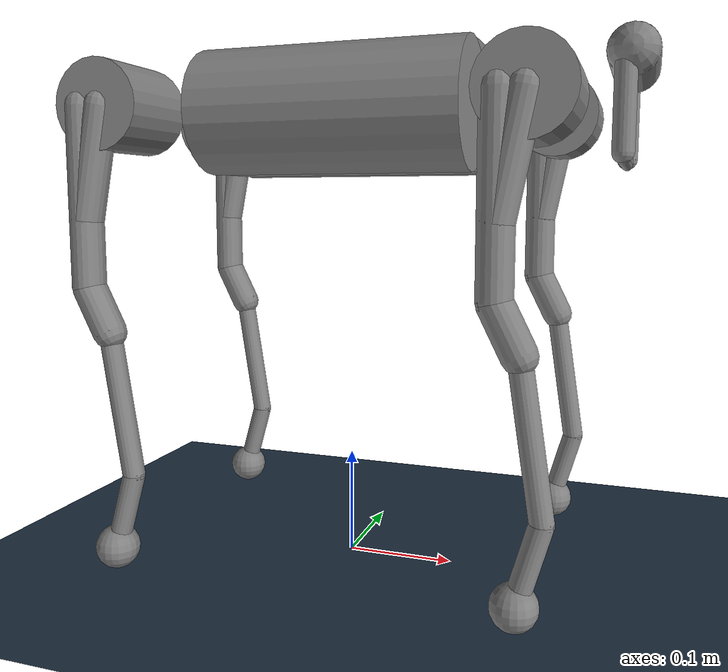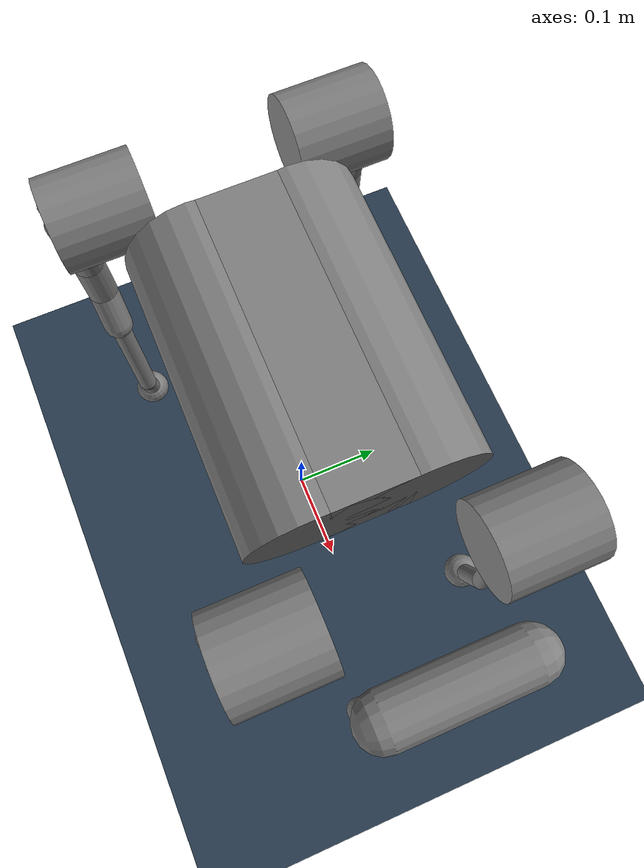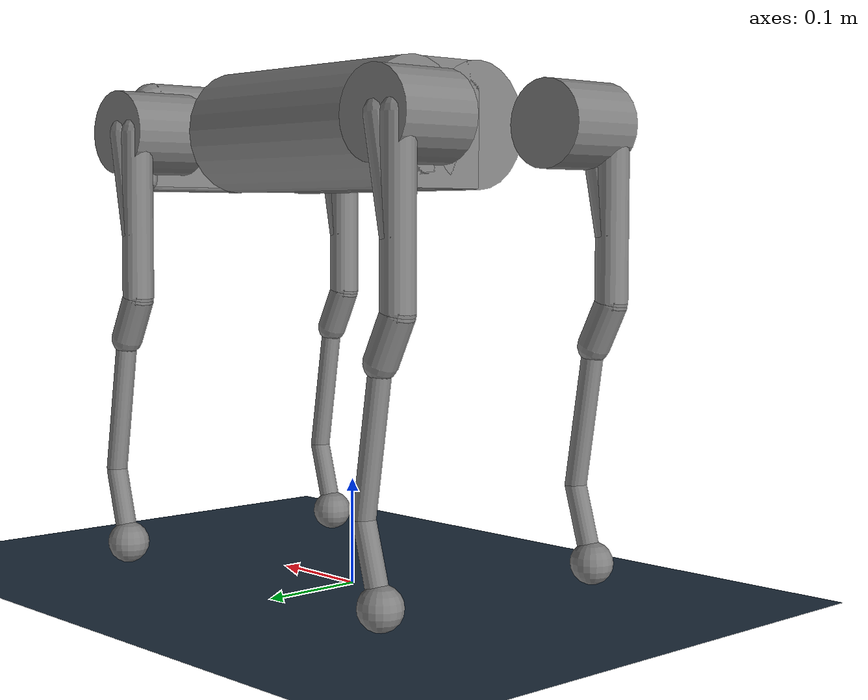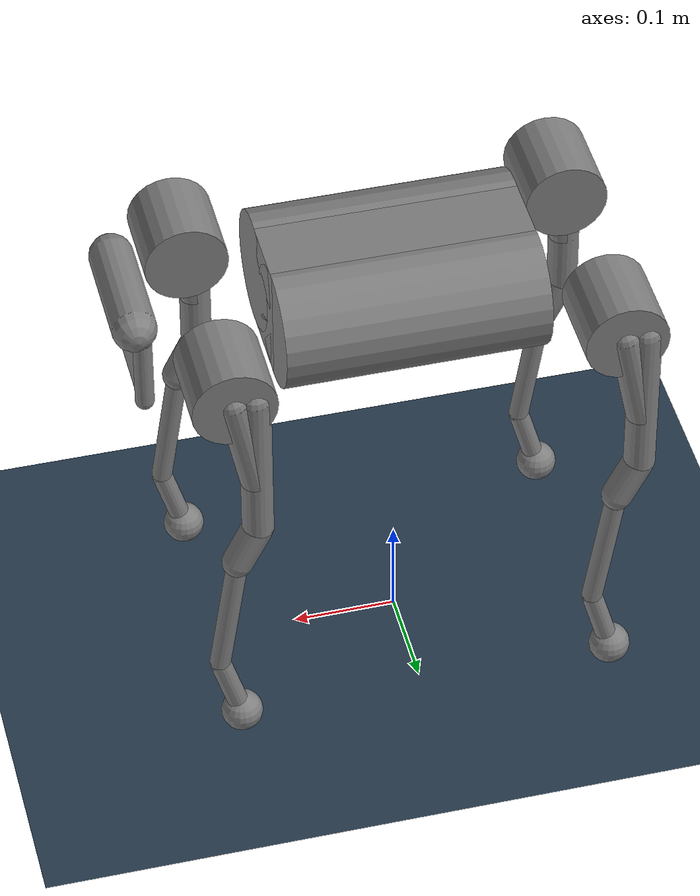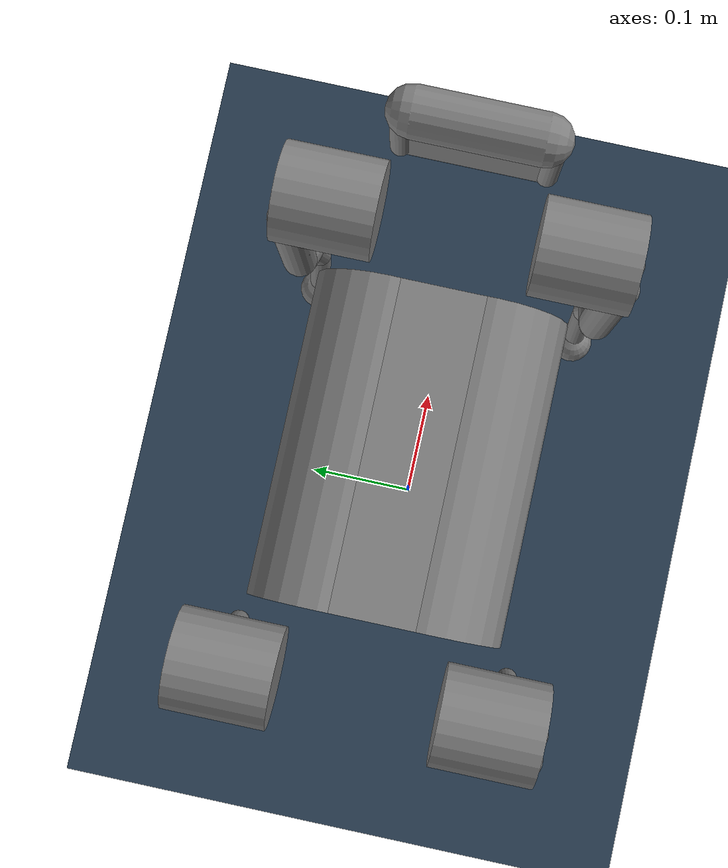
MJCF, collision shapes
<mujoco model="a1">
  <compiler angle="radian" meshdir="assets" texturedir="assets" autolimits="true"/>

  <option cone="elliptic" impratio="100"/>

  <default>
    <default class="a1">
      <geom friction="0.6" margin="0.001"/>
      <joint axis="0 1 0" damping="2" armature="0.01" frictionloss="0.2"/>
      <position kp="100" forcerange="-33.5 33.5"/>
      <default class="abduction">
        <joint axis="1 0 0" damping="1" range="-0.802851 0.802851"/>
        <position ctrlrange="-0.802851 0.802851"/>
      </default>
      <default class="hip">
        <joint range="-1.0472 4.18879"/>
        <position ctrlrange="-1.0472 4.18879"/>
      </default>
      <default class="knee">
        <joint range="-2.69653 -0.916298"/>
        <position ctrlrange="-2.69653 -0.916298"/>
      </default>
      <default class="visual">
        <geom type="mesh" contype="0" conaffinity="0" group="2" material="dark"/>
      </default>
      <default class="collision">
        <geom group="3" type="capsule"/>
        <default class="hip_left">
          <geom size="0.04 0.04" quat="1 1 0 0" type="cylinder" pos="0 0.055 0"/>
        </default>
        <default class="hip_right">
          <geom size="0.04 0.04" quat="1 1 0 0" type="cylinder" pos="0 -0.055 0"/>
        </default>
        <default class="thigh1">
          <geom size="0.015" fromto="-0.02 0 0 -0.02 0 -0.16"/>
        </default>
        <default class="thigh2">
          <geom size="0.015" fromto="0 0 0 -0.02 0 -0.1"/>
        </default>
        <default class="thigh3">
          <geom size="0.015" fromto="-0.02 0 -0.16 0 0 -0.2"/>
        </default>
        <default class="calf1">
          <geom size="0.01" fromto="0 0 0 0.02 0 -0.13"/>
        </default>
        <default class="calf2">
          <geom size="0.01" fromto="0.02 0 -0.13 0 0 -0.2"/>
        </default>
        <default class="foot">
          <geom type="sphere" size="0.02" pos="0 0 -0.2" priority="1" solimp="0.015 1 0.02" condim="6"
            friction="0.8 0.02 0.01"/>
        </default>
      </default>
    </default>
  </default>

  <asset>
    <material name="dark" specular="0" shininess="0.25" rgba="0.2 0.2 0.2 1"/>
    <texture type="2d" name="trunk_A1" file="trunk_A1.png"/>
    <material name="carbonfibre" texture="trunk_A1" specular="0" shininess="0.25"/>

    <mesh class="a1" file="calf.obj"/>
    <mesh class="a1" file="hip.obj"/>
    <mesh class="a1" file="thigh.obj"/>
    <mesh class="a1" file="thigh_mirror.obj"/>
    <mesh class="a1" file="trunk.obj"/>

    <texture name="texplane" type="2d" builtin="checker" rgb1=".2 .3 .4" rgb2=".1 0.15 0.2" width="512" height="512" mark="cross" markrgb=".8 .8 .8"/>
    <material name="matplane" reflectance="0.3" texture="texplane" texrepeat="1 1" texuniform="true"/>
  </asset>

  <worldbody>
    <light directional="true" diffuse=".4 .4 .4" specular="0.1 0.1 0.1" pos="0 0 5.0" dir="0 0 -1" castshadow="false" />
    <light directional="true" diffuse=".6 .6 .6" specular="0.2 0.2 0.2" pos="0 0 4" dir="0 0 -1" />
    <geom name="ground" type="plane" pos="0 0 0" size="0 0 1" material="matplane" condim="1"/>
    <body name="trunk" pos="0 0 0.43" childclass="a1">
      <freejoint/>
      <inertial mass="4.713" pos="0 0.0041 -0.0005"
        fullinertia="0.0158533 0.0377999 0.0456542 -3.66e-05 -6.11e-05 -2.75e-05"/>
      <site name='imu' size='0.01' pos='0.0 0.0 0.0' />
      <geom class="visual" mesh="trunk" material="carbonfibre"/>
      <geom class="collision" size="0.125 0.04 0.057" type="box"/>
      <geom class="collision" quat="1 0 1 0" pos="0 -0.04 0" size="0.058 0.125" type="cylinder"/>
      <geom class="collision" quat="1 0 1 0" pos="0 +0.04 0" size="0.058 0.125" type="cylinder"/>
      <geom class="collision" pos="0.25 0 0" size="0.005 0.06 0.05" type="box"/>
      <geom class="collision" pos="0.25 0.06 -0.01" size="0.009 0.035"/>
      <geom class="collision" pos="0.25 -0.06 -0.01" size="0.009 0.035"/>
      <geom class="collision" pos="0.25 0 -0.05" size="0.005 0.06" quat="1 1 0 0"/>
      <geom class="collision" pos="0.255 0 0.0355" size="0.021 0.052" quat="1 1 0 0"/>
      <body name="FR_hip" pos="0.183 -0.047 0">
        <inertial mass="0.696" pos="-0.003311 -0.000635 3.1e-05" quat="0.507528 0.506268 0.491507 0.494499"
          diaginertia="0.000807752 0.00055293 0.000468983"/>
        <joint class="abduction" name="FR_hip_joint"/>
        <geom class="visual" mesh="hip" quat="0 1 0 0"/>
        <geom class="hip_right"/>
        <body name="FR_thigh" pos="0 -0.08505 0">
          <inertial mass="1.013" pos="-0.003237 0.022327 -0.027326" quat="0.999125 -0.00256393 -0.0409531 -0.00806091"
            diaginertia="0.00555739 0.00513936 0.00133944"/>
          <joint class="hip" name="FR_thigh_joint"/>
          <geom class="visual" mesh="thigh_mirror"/>
          <geom class="thigh1"/>
          <geom class="thigh2"/>
          <geom class="thigh3"/>
          <body name="FR_calf" pos="0 0 -0.2">
            <inertial mass="0.226" pos="0.00472659 0 -0.131975" quat="0.706886 0.017653 0.017653 0.706886"
              diaginertia="0.00340344 0.00339393 3.54834e-05"/>
            <joint class="knee" name="FR_calf_joint"/>
            <geom class="visual" mesh="calf"/>
            <geom class="calf1"/>
            <geom class="calf2"/>
            <geom class="foot"/>
          </body>
        </body>
      </body>
      <body name="FL_hip" pos="0.183 0.047 0">
        <inertial mass="0.696" pos="-0.003311 0.000635 3.1e-05" quat="0.494499 0.491507 0.506268 0.507528"
          diaginertia="0.000807752 0.00055293 0.000468983"/>
        <joint class="abduction" name="FL_hip_joint"/>
        <geom class="visual" mesh="hip"/>
        <geom class="hip_left"/>
        <geom class="collision" size="0.04 0.04" pos="0 0.055 0" quat="1 1 0 0" type="cylinder"/>
        <body name="FL_thigh" pos="0 0.08505 0">
          <inertial mass="1.013" pos="-0.003237 -0.022327 -0.027326" quat="0.999125 0.00256393 -0.0409531 0.00806091"
            diaginertia="0.00555739 0.00513936 0.00133944"/>
          <joint class="hip" name="FL_thigh_joint"/>
          <geom class="visual" mesh="thigh"/>
          <geom class="thigh1"/>
          <geom class="thigh2"/>
          <geom class="thigh3"/>
          <body name="FL_calf" pos="0 0 -0.2">
            <inertial mass="0.226" pos="0.00472659 0 -0.131975" quat="0.706886 0.017653 0.017653 0.706886"
              diaginertia="0.00340344 0.00339393 3.54834e-05"/>
            <joint class="knee" name="FL_calf_joint"/>
            <geom class="visual" mesh="calf"/>
            <geom class="calf1"/>
            <geom class="calf2"/>
            <geom class="foot"/>
          </body>
        </body>
      </body>
      <body name="RR_hip" pos="-0.183 -0.047 0">
        <inertial mass="0.696" pos="0.003311 -0.000635 3.1e-05" quat="0.491507 0.494499 0.507528 0.506268"
          diaginertia="0.000807752 0.00055293 0.000468983"/>
        <joint class="abduction" name="RR_hip_joint"/>
        <geom class="visual" quat="0 0 0 -1" mesh="hip"/>
        <geom class="hip_right"/>
        <body name="RR_thigh" pos="0 -0.08505 0">
          <inertial mass="1.013" pos="-0.003237 0.022327 -0.027326" quat="0.999125 -0.00256393 -0.0409531 -0.00806091"
            diaginertia="0.00555739 0.00513936 0.00133944"/>
          <joint class="hip" name="RR_thigh_joint"/>
          <geom class="visual" mesh="thigh_mirror"/>
          <geom class="thigh1"/>
          <geom class="thigh2"/>
          <geom class="thigh3"/>
          <body name="RR_calf" pos="0 0 -0.2">
            <inertial mass="0.226" pos="0.00472659 0 -0.131975" quat="0.706886 0.017653 0.017653 0.706886"
              diaginertia="0.00340344 0.00339393 3.54834e-05"/>
            <joint class="knee" name="RR_calf_joint"/>
            <geom class="visual" mesh="calf"/>
            <geom class="calf1"/>
            <geom class="calf2"/>
            <geom class="foot"/>
          </body>
        </body>
      </body>
      <body name="RL_hip" pos="-0.183 0.047 0">
        <inertial mass="0.696" pos="0.003311 0.000635 3.1e-05" quat="0.506268 0.507528 0.494499 0.491507"
          diaginertia="0.000807752 0.00055293 0.000468983"/>
        <joint class="abduction" name="RL_hip_joint"/>
        <geom class="visual" quat="0 0 1 0" mesh="hip"/>
        <geom class="hip_left"/>
        <body name="RL_thigh" pos="0 0.08505 0">
          <inertial mass="1.013" pos="-0.003237 -0.022327 -0.027326" quat="0.999125 0.00256393 -0.0409531 0.00806091"
            diaginertia="0.00555739 0.00513936 0.00133944"/>
          <joint class="hip" name="RL_thigh_joint"/>
          <geom class="visual" mesh="thigh"/>
          <geom class="thigh1"/>
          <geom class="thigh2"/>
          <geom class="thigh3"/>
          <body name="RL_calf" pos="0 0 -0.2">
            <inertial mass="0.226" pos="0.00472659 0 -0.131975" quat="0.706886 0.017653 0.017653 0.706886"
              diaginertia="0.00340344 0.00339393 3.54834e-05"/>
            <joint class="knee" name="RL_calf_joint"/>
            <geom class="visual" mesh="calf"/>
            <geom class="calf1"/>
            <geom class="calf2"/>
            <geom class="foot"/>
          </body>
        </body>
      </body>
    </body>
  </worldbody>

  <actuator>
    <position class="abduction" name="FR_hip_joint" joint="FR_hip_joint"/>
    <position class="hip" name="FR_thigh_joint" joint="FR_thigh_joint"/>
    <position class="knee" name="FR_calf_joint" joint="FR_calf_joint"/>
    <position class="abduction" name="FL_hip_joint" joint="FL_hip_joint"/>
    <position class="hip" name="FL_thigh_joint" joint="FL_thigh_joint"/>
    <position class="knee" name="FL_calf_joint" joint="FL_calf_joint"/>
    <position class="abduction" name="RR_hip_joint" joint="RR_hip_joint"/>
    <position class="hip" name="RR_thigh_joint" joint="RR_thigh_joint"/>
    <position class="knee" name="RR_calf_joint" joint="RR_calf_joint"/>
    <position class="abduction" name="RL_hip_joint" joint="RL_hip_joint"/>
    <position class="hip" name="RL_thigh_joint" joint="RL_thigh_joint"/>
    <position class="knee" name="RL_calf_joint" joint="RL_calf_joint"/>
  </actuator>

  <sensor>
      <framequat name="orientation" objtype="site" noise="0.001" objname="imu" />
      <gyro name="angular-velocity" site="imu" noise="0.005" />
  </sensor>

  <keyframe>
    <key name="home" qpos="0 0 0.27 1 0 0 0 -0.1 0.8 -1.5 0.1 0.8 -1.5 -0.1 1.0 -1.5 0.1 1.0 -1.5"
      ctrl="-0.1 0.8 -1.5 0.1 0.8 -1.5 -0.1 1.0 -1.5 0.1 1.0 -1.5"/>
  </keyframe>
</mujoco>
